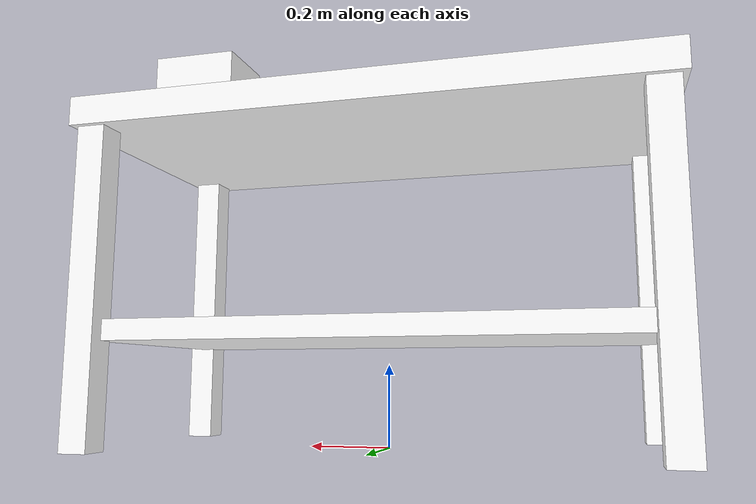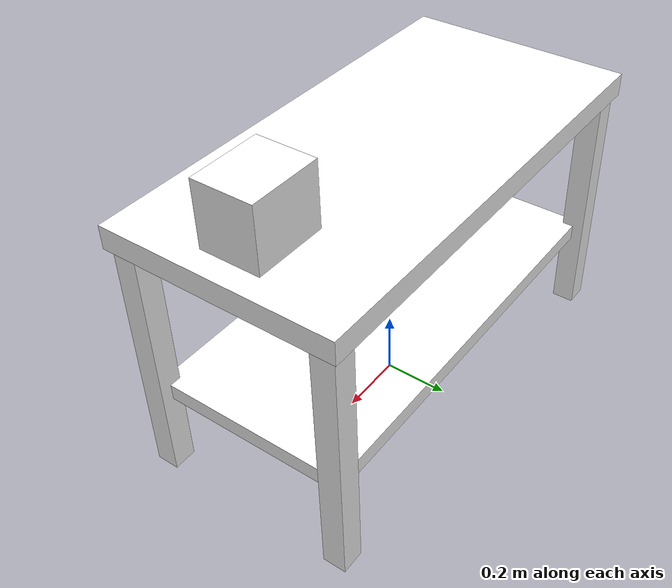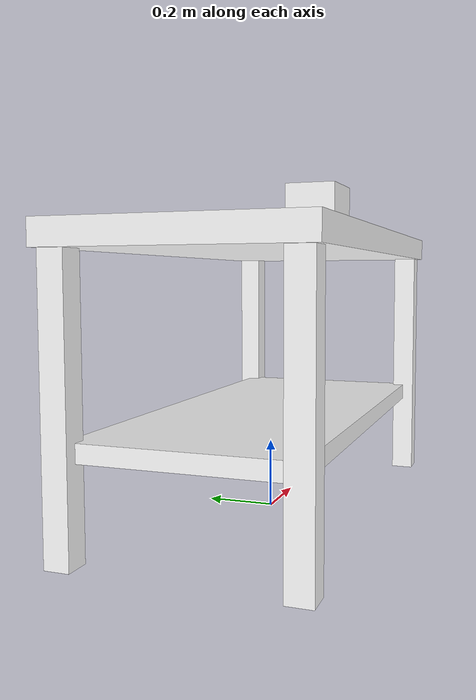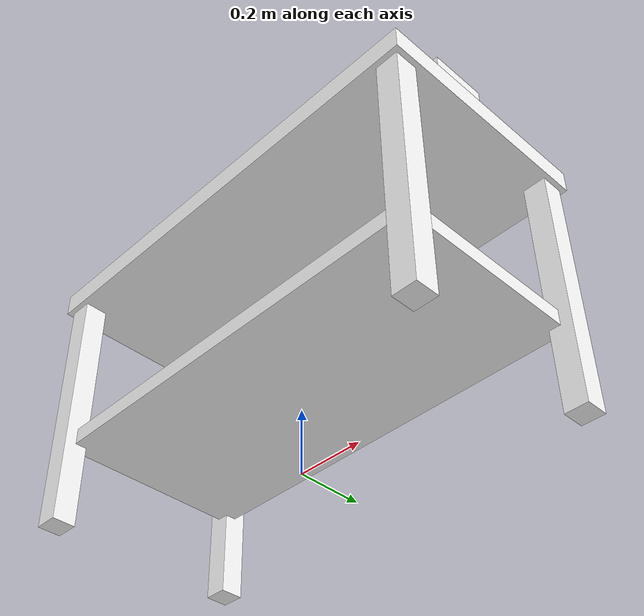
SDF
<?xml version="1.0"?>
<sdf version="1.10">
  <model name="workbench">
    <static>true</static>
      <link name="body">
        <collision name="top_col"><pose>0 0 0.80 0 0 0</pose>
          <geometry><box><size>1.40 0.70 0.07</size></box></geometry></collision>
        <visual name="top_vis"><pose>0 0 0.80 0 0 0</pose>
          <geometry><box><size>1.40 0.70 0.07</size></box></geometry>
          <material>
          <diffuse>1 1 1 1</diffuse>
          <specular>0.15 0.15 0.15 1</specular>
          <pbr><metal>
            <albedo_map>model://slam_assets/materials/textures/bench_top.png</albedo_map>
            <roughness>0.85</roughness><metalness>0.0</metalness>
          </metal></pbr>
        </material>
        </visual>
        <collision name="legA_col"><pose>-0.65 -0.30 0.39 0 0 0</pose>
          <geometry><box><size>0.07 0.07 0.78</size></box></geometry></collision>
        <visual name="legA_vis"><pose>-0.65 -0.30 0.39 0 0 0</pose>
          <geometry><box><size>0.07 0.07 0.78</size></box></geometry>
          <material>
          <diffuse>1 1 1 1</diffuse>
          <specular>0.15 0.15 0.15 1</specular>
          <pbr><metal>
            <albedo_map>model://slam_assets/materials/textures/metal_panel.png</albedo_map>
            <roughness>0.85</roughness><metalness>0.0</metalness>
          </metal></pbr>
        </material>
        </visual>
        <collision name="legB_col"><pose>0.65 -0.30 0.39 0 0 0</pose>
          <geometry><box><size>0.07 0.07 0.78</size></box></geometry></collision>
        <visual name="legB_vis"><pose>0.65 -0.30 0.39 0 0 0</pose>
          <geometry><box><size>0.07 0.07 0.78</size></box></geometry>
          <material>
          <diffuse>1 1 1 1</diffuse>
          <specular>0.15 0.15 0.15 1</specular>
          <pbr><metal>
            <albedo_map>model://slam_assets/materials/textures/metal_panel.png</albedo_map>
            <roughness>0.85</roughness><metalness>0.0</metalness>
          </metal></pbr>
        </material>
        </visual>
        <collision name="legC_col"><pose>-0.65 0.30 0.39 0 0 0</pose>
          <geometry><box><size>0.07 0.07 0.78</size></box></geometry></collision>
        <visual name="legC_vis"><pose>-0.65 0.30 0.39 0 0 0</pose>
          <geometry><box><size>0.07 0.07 0.78</size></box></geometry>
          <material>
          <diffuse>1 1 1 1</diffuse>
          <specular>0.15 0.15 0.15 1</specular>
          <pbr><metal>
            <albedo_map>model://slam_assets/materials/textures/metal_panel.png</albedo_map>
            <roughness>0.85</roughness><metalness>0.0</metalness>
          </metal></pbr>
        </material>
        </visual>
        <collision name="legD_col"><pose>0.65 0.30 0.39 0 0 0</pose>
          <geometry><box><size>0.07 0.07 0.78</size></box></geometry></collision>
        <visual name="legD_vis"><pose>0.65 0.30 0.39 0 0 0</pose>
          <geometry><box><size>0.07 0.07 0.78</size></box></geometry>
          <material>
          <diffuse>1 1 1 1</diffuse>
          <specular>0.15 0.15 0.15 1</specular>
          <pbr><metal>
            <albedo_map>model://slam_assets/materials/textures/metal_panel.png</albedo_map>
            <roughness>0.85</roughness><metalness>0.0</metalness>
          </metal></pbr>
        </material>
        </visual>
        <collision name="undershelf_col"><pose>0 0 0.28 0 0 0</pose>
          <geometry><box><size>1.30 0.60 0.05</size></box></geometry></collision>
        <visual name="undershelf_vis"><pose>0 0 0.28 0 0 0</pose>
          <geometry><box><size>1.30 0.60 0.05</size></box></geometry>
          <material>
          <diffuse>1 1 1 1</diffuse>
          <specular>0.15 0.15 0.15 1</specular>
          <pbr><metal>
            <albedo_map>model://slam_assets/materials/textures/metal_panel.png</albedo_map>
            <roughness>0.85</roughness><metalness>0.0</metalness>
          </metal></pbr>
        </material>
        </visual>
        <collision name="vice_col"><pose>0.52 0.0 0.93 0 0 0</pose>
          <geometry><box><size>0.22 0.18 0.20</size></box></geometry></collision>
        <visual name="vice_vis"><pose>0.52 0.0 0.93 0 0 0</pose>
          <geometry><box><size>0.22 0.18 0.20</size></box></geometry>
          <material>
          <diffuse>1 1 1 1</diffuse>
          <specular>0.15 0.15 0.15 1</specular>
          <pbr><metal>
            <albedo_map>model://slam_assets/materials/textures/metal_brushed.png</albedo_map>
            <roughness>0.85</roughness><metalness>0.0</metalness>
          </metal></pbr>
        </material>
        </visual>
      </link>
  </model>
</sdf>
